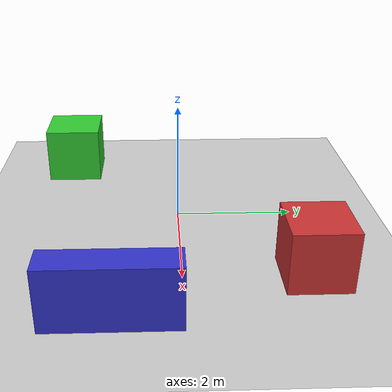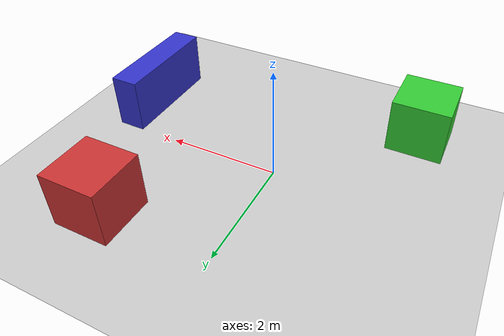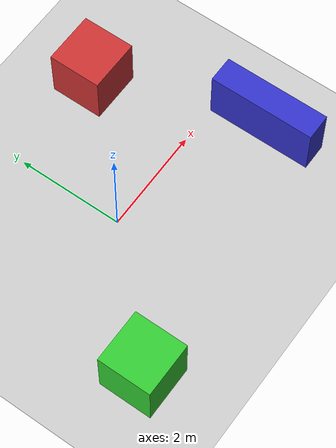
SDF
<?xml version="1.0" ?>
<sdf version="1.6">
  <world name="simple_unknown_world">

    <!-- Ground plane -->
    <include>
      <uri>model://ground_plane</uri>
    </include>

    <!-- Sun for lighting -->
    <include>
      <uri>model://sun</uri>
    </include>

    <!-- Simple box obstacles -->
    <model name="obstacle1">
      <static>true</static>
      <pose>2 2 0.5 0 0 0</pose>
      <link name="link">
        <collision name="collision">
          <geometry>
            <box><size>1 1 1</size></box>
          </geometry>
        </collision>
        <visual name="visual">
          <geometry>
            <box><size>1 1 1</size></box>
          </geometry>
          <material>
            <ambient>0.8 0.2 0.2 1</ambient>
            <diffuse>0.8 0.2 0.2 1</diffuse>
          </material>
        </visual>
      </link>
    </model>

    <model name="obstacle2">
      <static>true</static>
      <pose>-2 -2 0.5 0 0 0</pose>
      <link name="link">
        <collision name="collision">
          <geometry>
            <box><size>1 1 1</size></box>
          </geometry>
        </collision>
        <visual name="visual">
          <geometry>
            <box><size>1 1 1</size></box>
          </geometry>
          <material>
            <ambient>0.2 0.8 0.2 1</ambient>
            <diffuse>0.2 0.8 0.2 1</diffuse>
          </material>
        </visual>
      </link>
    </model>

    <model name="obstacle3">
      <static>true</static>
      <pose>3 -1 0.5 0 0 0</pose>
      <link name="link">
        <collision name="collision">
          <geometry>
            <box><size>0.5 2 1</size></box>
          </geometry>
        </collision>
        <visual name="visual">
          <geometry>
            <box><size>0.5 2 1</size></box>
          </geometry>
          <material>
            <ambient>0.2 0.2 0.8 1</ambient>
            <diffuse>0.2 0.2 0.8 1</diffuse>
          </material>
        </visual>
      </link>
    </model>

  </world>
</sdf>
